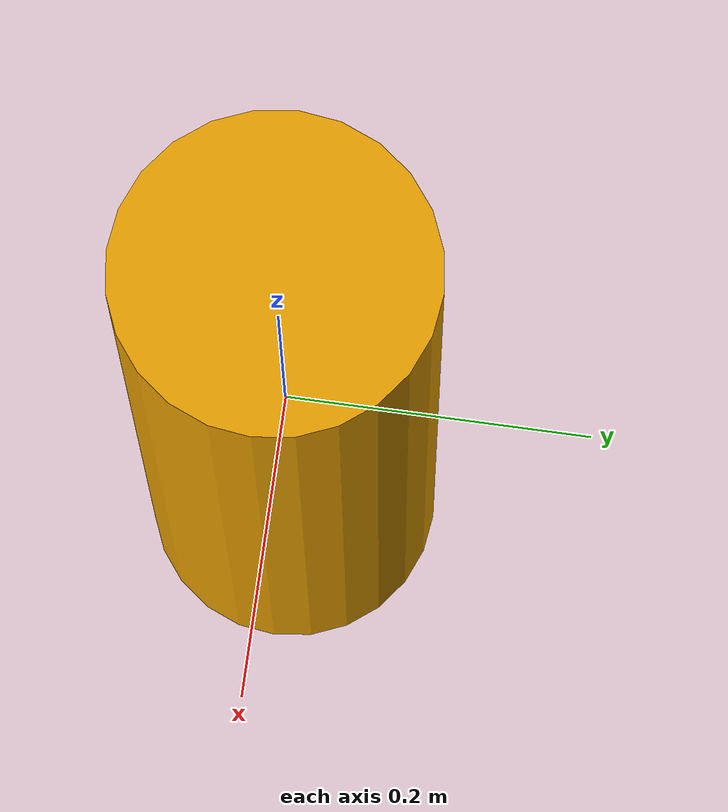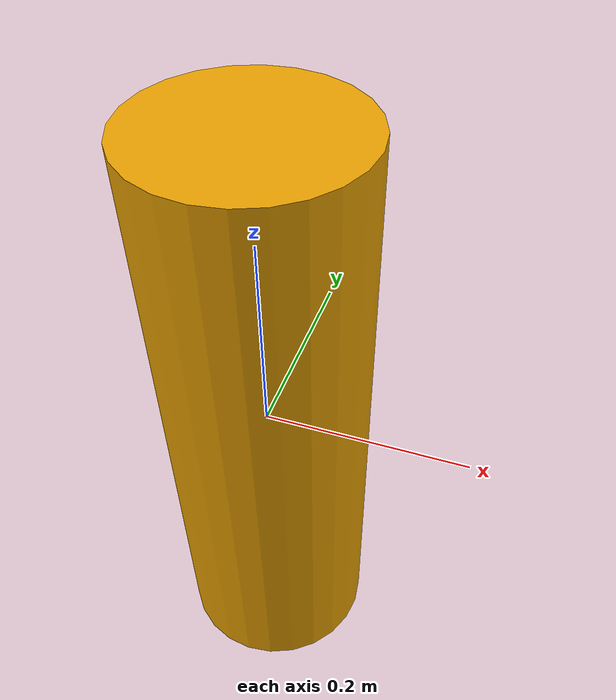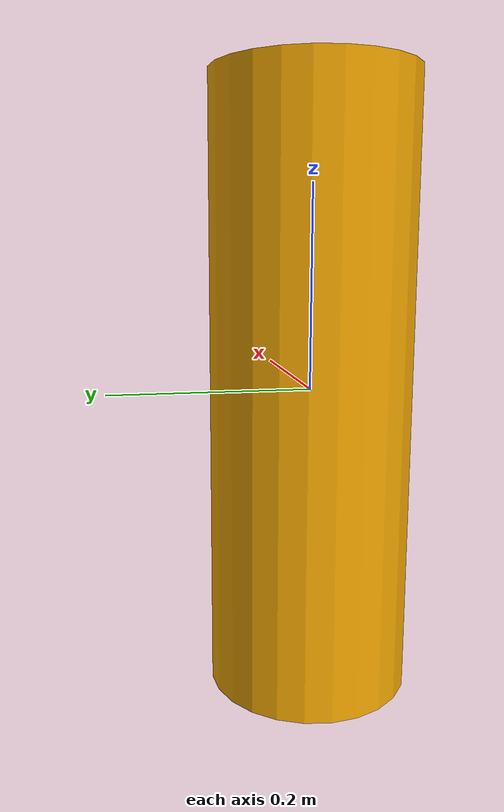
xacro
<?xml version="1.0"?>
<robot name="blue_cylinder">
  <link name="cylinder_link">
    <visual><geometry><cylinder radius="0.1" length="0.6"/></geometry></visual>
    <collision><geometry><cylinder radius="0.1" length="0.6"/></geometry></collision>
    <inertial><mass value="0.5"/><inertia ixx="0.01" ixy="0" ixz="0" iyy="0.01" iyz="0" izz="0.01"/></inertial>
  </link>
  <gazebo reference="cylinder_link"><visual><material><ambient>0 0 1 1</ambient><diffuse>0 0 1 1</diffuse><specular>0.1 0.1 0.1 1</specular></material></visual></gazebo>
</robot>
